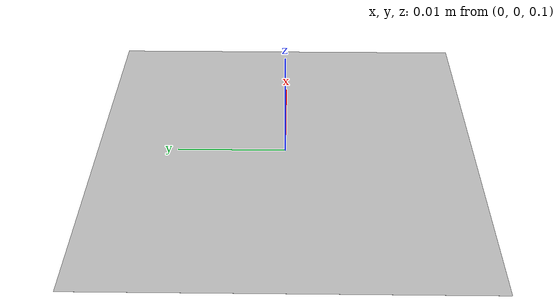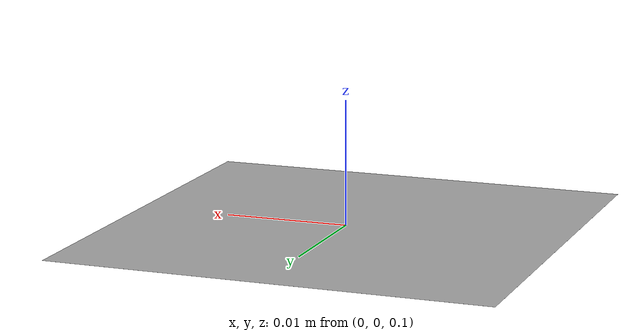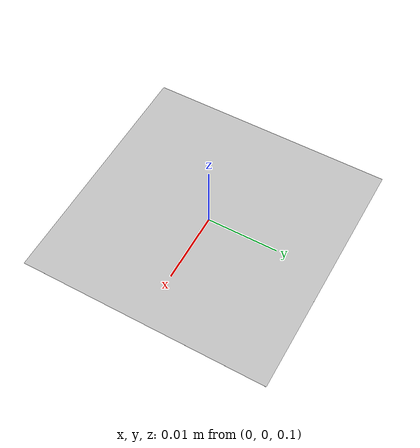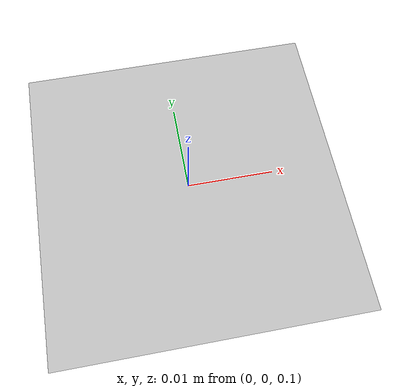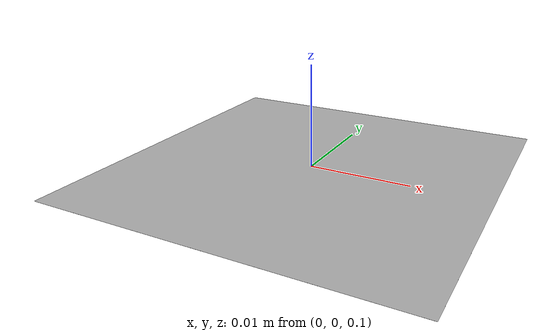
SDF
<sdf version="1.7">
  <world name="default">
    <include>
      <uri>model://aruco_marker_0</uri>
      <name>aruco_marker_instance</name>
      <pose>0 0 0.1 0 0 0</pose>
    </include>
  </world>
</sdf>

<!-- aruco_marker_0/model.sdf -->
<sdf version='1.7'>
  <model name='aruco_marker_0'>
    <static>true</static>
    <link name='link'>
      <visual name='visual'>
        <geometry>
          <plane>
            <normal>0 0 1</normal>
            <size>0.035 0.035 0.001 </size>
          </plane>
        </geometry>
        <material>
          <pbr>
            <metal>
              <albedo_map>materials/textures/aruco_marker_0.jpg</albedo_map>
              <roughness>1.0</roughness>
            </metal>
          </pbr>
        </material>
      </visual>
      <collision name='collision'>
        <geometry>
          <box>
            <size>0.035 0.035 0.001</size>
          </box>
        </geometry>
      </collision>
    </link>
  </model>
</sdf>
